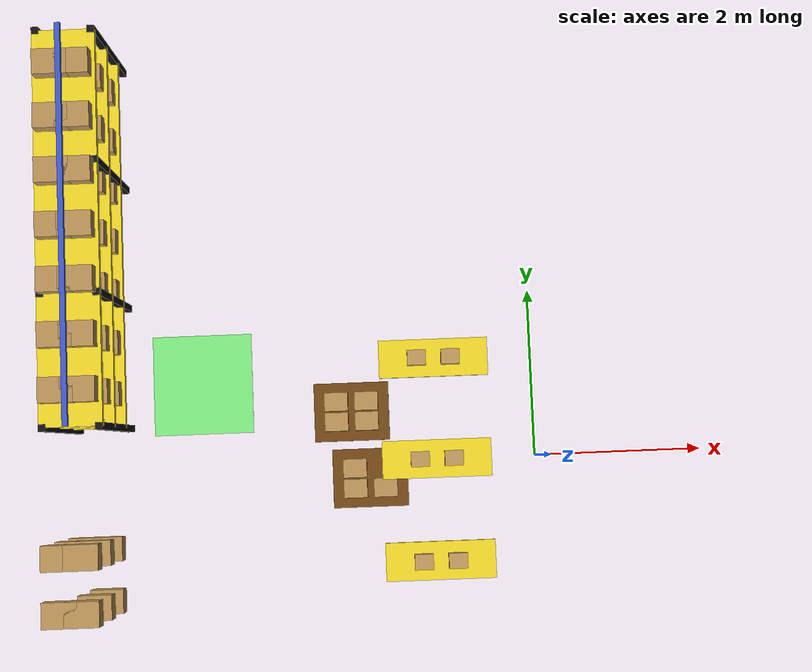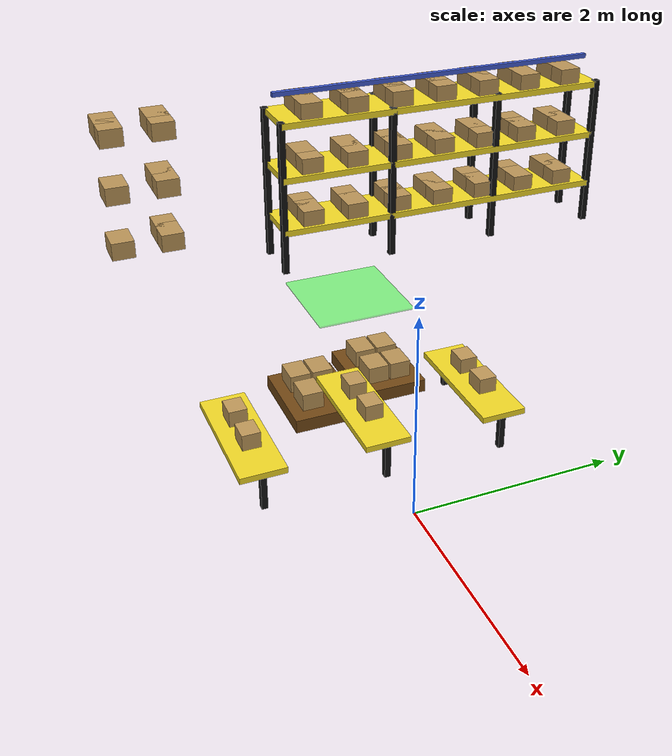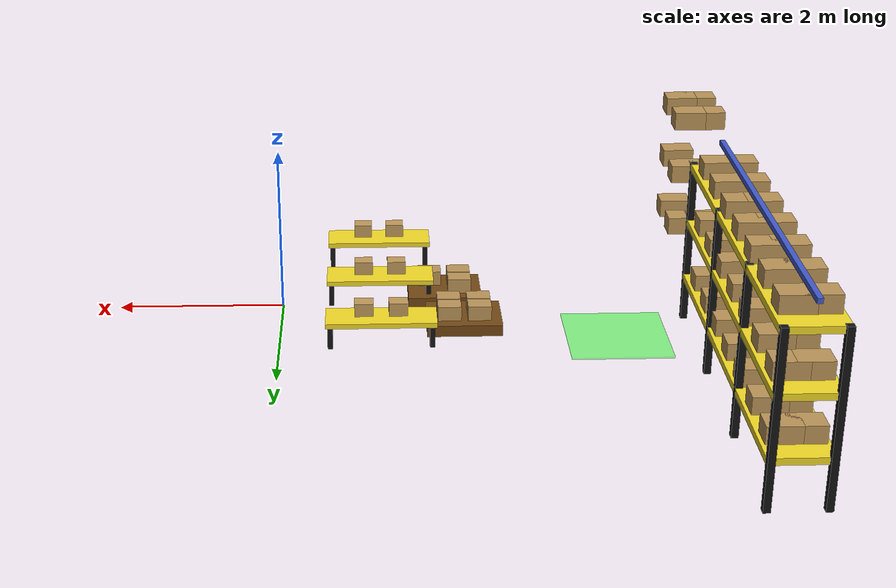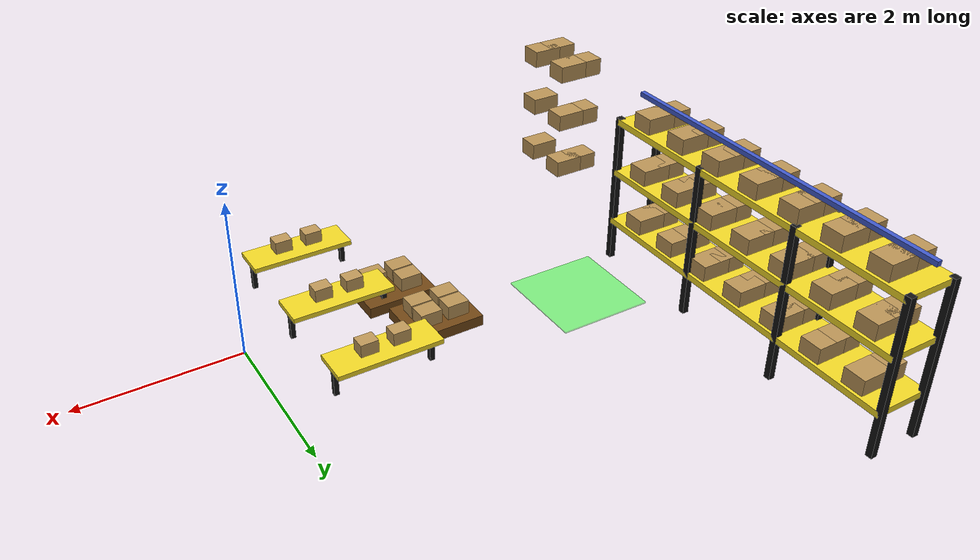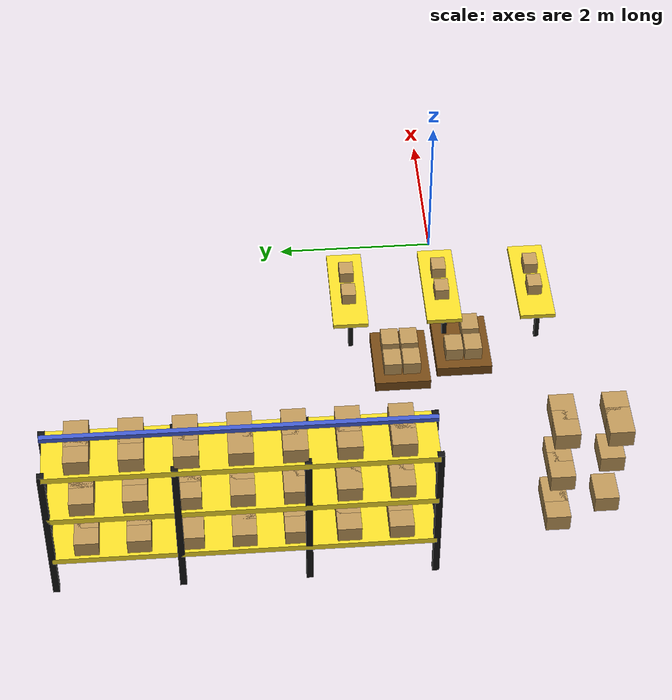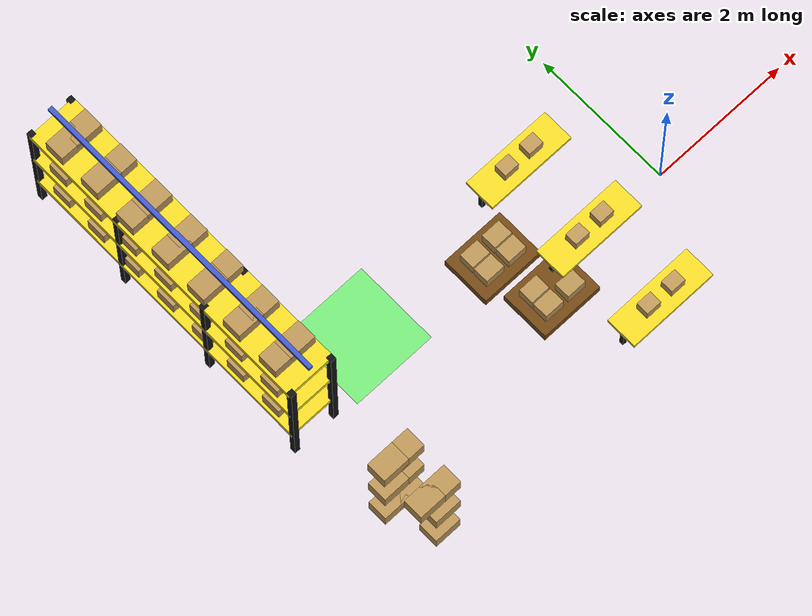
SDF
<sdf version="1.6">
 <world name="fuel_warehouse_world">
  <include><uri>model://sun</uri></include>
  <model name="left_rack_top">
   <static>true</static>
   <pose>-5.2 2.7 0 0 0 1.5708</pose>
   <link name="deck_0">
    <pose>0 0 0.55 0 0 0</pose>
    <visual name="visual">
     <geometry><box><size>4.4 0.7 0.08</size></box></geometry>
     <material><ambient>0.95 0.85 0.15 1</ambient><diffuse>0.95 0.85 0.15 1</diffuse></material>
    </visual>
    <collision name="collision"><geometry><box><size>4.4 0.7 0.08</size></box></geometry></collision>
   </link>
   <link name="deck_1">
    <pose>0 0 1.25 0 0 0</pose>
    <visual name="visual">
     <geometry><box><size>4.4 0.7 0.08</size></box></geometry>
     <material><ambient>0.95 0.85 0.15 1</ambient><diffuse>0.95 0.85 0.15 1</diffuse></material>
    </visual>
    <collision name="collision"><geometry><box><size>4.4 0.7 0.08</size></box></geometry></collision>
   </link>
   <link name="deck_2">
    <pose>0 0 1.95 0 0 0</pose>
    <visual name="visual">
     <geometry><box><size>4.4 0.7 0.08</size></box></geometry>
     <material><ambient>0.95 0.85 0.15 1</ambient><diffuse>0.95 0.85 0.15 1</diffuse></material>
    </visual>
    <collision name="collision"><geometry><box><size>4.4 0.7 0.08</size></box></geometry></collision>
   </link>
   <link name="leg_0_0">
    <pose>-2.2 -0.31 1.0 0 0 0</pose>
    <visual name="visual">
     <geometry><box><size>0.08 0.08 2.0</size></box></geometry>
     <material><ambient>0.07 0.07 0.07 1</ambient><diffuse>0.07 0.07 0.07 1</diffuse></material>
    </visual>
    <collision name="collision"><geometry><box><size>0.08 0.08 2.0</size></box></geometry></collision>
   </link>
   <link name="leg_0_1">
    <pose>-2.2 0.31 1.0 0 0 0</pose>
    <visual name="visual">
     <geometry><box><size>0.08 0.08 2.0</size></box></geometry>
     <material><ambient>0.07 0.07 0.07 1</ambient><diffuse>0.07 0.07 0.07 1</diffuse></material>
    </visual>
    <collision name="collision"><geometry><box><size>0.08 0.08 2.0</size></box></geometry></collision>
   </link>
   <link name="leg_1_0">
    <pose>-0.7333333333333334 -0.31 1.0 0 0 0</pose>
    <visual name="visual">
     <geometry><box><size>0.08 0.08 2.0</size></box></geometry>
     <material><ambient>0.07 0.07 0.07 1</ambient><diffuse>0.07 0.07 0.07 1</diffuse></material>
    </visual>
    <collision name="collision"><geometry><box><size>0.08 0.08 2.0</size></box></geometry></collision>
   </link>
   <link name="leg_1_1">
    <pose>-0.7333333333333334 0.31 1.0 0 0 0</pose>
    <visual name="visual">
     <geometry><box><size>0.08 0.08 2.0</size></box></geometry>
     <material><ambient>0.07 0.07 0.07 1</ambient><diffuse>0.07 0.07 0.07 1</diffuse></material>
    </visual>
    <collision name="collision"><geometry><box><size>0.08 0.08 2.0</size></box></geometry></collision>
   </link>
   <link name="leg_2_0">
    <pose>0.7333333333333334 -0.31 1.0 0 0 0</pose>
    <visual name="visual">
     <geometry><box><size>0.08 0.08 2.0</size></box></geometry>
     <material><ambient>0.07 0.07 0.07 1</ambient><diffuse>0.07 0.07 0.07 1</diffuse></material>
    </visual>
    <collision name="collision"><geometry><box><size>0.08 0.08 2.0</size></box></geometry></collision>
   </link>
   <link name="leg_2_1">
    <pose>0.7333333333333334 0.31 1.0 0 0 0</pose>
    <visual name="visual">
     <geometry><box><size>0.08 0.08 2.0</size></box></geometry>
     <material><ambient>0.07 0.07 0.07 1</ambient><diffuse>0.07 0.07 0.07 1</diffuse></material>
    </visual>
    <collision name="collision"><geometry><box><size>0.08 0.08 2.0</size></box></geometry></collision>
   </link>
   <link name="leg_3_0">
    <pose>2.2 -0.31 1.0 0 0 0</pose>
    <visual name="visual">
     <geometry><box><size>0.08 0.08 2.0</size></box></geometry>
     <material><ambient>0.07 0.07 0.07 1</ambient><diffuse>0.07 0.07 0.07 1</diffuse></material>
    </visual>
    <collision name="collision"><geometry><box><size>0.08 0.08 2.0</size></box></geometry></collision>
   </link>
   <link name="leg_3_1">
    <pose>2.2 0.31 1.0 0 0 0</pose>
    <visual name="visual">
     <geometry><box><size>0.08 0.08 2.0</size></box></geometry>
     <material><ambient>0.07 0.07 0.07 1</ambient><diffuse>0.07 0.07 0.07 1</diffuse></material>
    </visual>
    <collision name="collision"><geometry><box><size>0.08 0.08 2.0</size></box></geometry></collision>
   </link>
   <link name="top_beam">
    <pose>0 0 2.25 0 0 0</pose>
    <visual name="visual">
     <geometry><box><size>4.4 0.06 0.06</size></box></geometry>
     <material><ambient>0.25 0.35 0.8 1</ambient><diffuse>0.25 0.35 0.8 1</diffuse></material>
    </visual>
   </link>
  </model>
  <model name="left_rack_top_box_0">
   <static>true</static>
   <pose>-5.079993388231624 0.9000004407967559 0.68 0 0 0</pose>
   <link name="link">
    <visual name="visual">
     <geometry><box><size>0.38 0.28 0.22</size></box></geometry>
     <material><ambient>0.73 0.58 0.34 1</ambient><diffuse>0.73 0.58 0.34 1</diffuse></material>
    </visual>
    <collision name="collision"><geometry><box><size>0.38 0.28 0.22</size></box></geometry></collision>
   </link>
  </model>
  <model name="left_rack_top_box_1">
   <static>true</static>
   <pose>-5.319993388230004 0.8999995592275312 0.68 0 0 0</pose>
   <link name="link">
    <visual name="visual">
     <geometry><box><size>0.38 0.28 0.22</size></box></geometry>
     <material><ambient>0.73 0.58 0.34 1</ambient><diffuse>0.73 0.58 0.34 1</diffuse></material>
    </visual>
    <collision name="collision"><geometry><box><size>0.38 0.28 0.22</size></box></geometry></collision>
   </link>
  </model>
  <model name="left_rack_top_box_2">
   <static>true</static>
   <pose>-5.079995592154686 1.5000004407927081 0.68 0 0 0</pose>
   <link name="link">
    <visual name="visual">
     <geometry><box><size>0.38 0.28 0.22</size></box></geometry>
     <material><ambient>0.73 0.58 0.34 1</ambient><diffuse>0.73 0.58 0.34 1</diffuse></material>
    </visual>
    <collision name="collision"><geometry><box><size>0.38 0.28 0.22</size></box></geometry></collision>
   </link>
  </model>
  <model name="left_rack_top_box_3">
   <static>true</static>
   <pose>-5.319995592153067 1.4999995592234834 0.68 0 0 0</pose>
   <link name="link">
    <visual name="visual">
     <geometry><box><size>0.38 0.28 0.22</size></box></geometry>
     <material><ambient>0.73 0.58 0.34 1</ambient><diffuse>0.73 0.58 0.34 1</diffuse></material>
    </visual>
    <collision name="collision"><geometry><box><size>0.38 0.28 0.22</size></box></geometry></collision>
   </link>
  </model>
  <model name="left_rack_top_box_4">
   <static>true</static>
   <pose>-5.079997796077748 2.1000004407886603 0.68 0 0 0</pose>
   <link name="link">
    <visual name="visual">
     <geometry><box><size>0.38 0.28 0.22</size></box></geometry>
     <material><ambient>0.73 0.58 0.34 1</ambient><diffuse>0.73 0.58 0.34 1</diffuse></material>
    </visual>
    <collision name="collision"><geometry><box><size>0.38 0.28 0.22</size></box></geometry></collision>
   </link>
  </model>
  <model name="left_rack_top_box_5">
   <static>true</static>
   <pose>-5.319997796076128 2.0999995592194356 0.68 0 0 0</pose>
   <link name="link">
    <visual name="visual">
     <geometry><box><size>0.38 0.28 0.22</size></box></geometry>
     <material><ambient>0.73 0.58 0.34 1</ambient><diffuse>0.73 0.58 0.34 1</diffuse></material>
    </visual>
    <collision name="collision"><geometry><box><size>0.38 0.28 0.22</size></box></geometry></collision>
   </link>
  </model>
  <model name="left_rack_top_box_6">
   <static>true</static>
   <pose>-5.08000000000081 2.7000004407846125 0.68 0 0 0</pose>
   <link name="link">
    <visual name="visual">
     <geometry><box><size>0.38 0.28 0.22</size></box></geometry>
     <material><ambient>0.73 0.58 0.34 1</ambient><diffuse>0.73 0.58 0.34 1</diffuse></material>
    </visual>
    <collision name="collision"><geometry><box><size>0.38 0.28 0.22</size></box></geometry></collision>
   </link>
  </model>
  <model name="left_rack_top_box_7">
   <static>true</static>
   <pose>-5.31999999999919 2.699999559215388 0.68 0 0 0</pose>
   <link name="link">
    <visual name="visual">
     <geometry><box><size>0.38 0.28 0.22</size></box></geometry>
     <material><ambient>0.73 0.58 0.34 1</ambient><diffuse>0.73 0.58 0.34 1</diffuse></material>
    </visual>
    <collision name="collision"><geometry><box><size>0.38 0.28 0.22</size></box></geometry></collision>
   </link>
  </model>
  <model name="left_rack_top_box_8">
   <static>true</static>
   <pose>-5.080002203923872 3.3000004407805648 0.68 0 0 0</pose>
   <link name="link">
    <visual name="visual">
     <geometry><box><size>0.38 0.28 0.22</size></box></geometry>
     <material><ambient>0.73 0.58 0.34 1</ambient><diffuse>0.73 0.58 0.34 1</diffuse></material>
    </visual>
    <collision name="collision"><geometry><box><size>0.38 0.28 0.22</size></box></geometry></collision>
   </link>
  </model>
  <model name="left_rack_top_box_9">
   <static>true</static>
   <pose>-5.320002203922252 3.29999955921134 0.68 0 0 0</pose>
   <link name="link">
    <visual name="visual">
     <geometry><box><size>0.38 0.28 0.22</size></box></geometry>
     <material><ambient>0.73 0.58 0.34 1</ambient><diffuse>0.73 0.58 0.34 1</diffuse></material>
    </visual>
    <collision name="collision"><geometry><box><size>0.38 0.28 0.22</size></box></geometry></collision>
   </link>
  </model>
  <model name="left_rack_top_box_10">
   <static>true</static>
   <pose>-5.080004407846934 3.900000440776517 0.68 0 0 0</pose>
   <link name="link">
    <visual name="visual">
     <geometry><box><size>0.38 0.28 0.22</size></box></geometry>
     <material><ambient>0.73 0.58 0.34 1</ambient><diffuse>0.73 0.58 0.34 1</diffuse></material>
    </visual>
    <collision name="collision"><geometry><box><size>0.38 0.28 0.22</size></box></geometry></collision>
   </link>
  </model>
  <model name="left_rack_top_box_11">
   <static>true</static>
   <pose>-5.320004407845314 3.8999995592072922 0.68 0 0 0</pose>
   <link name="link">
    <visual name="visual">
     <geometry><box><size>0.38 0.28 0.22</size></box></geometry>
     <material><ambient>0.73 0.58 0.34 1</ambient><diffuse>0.73 0.58 0.34 1</diffuse></material>
    </visual>
    <collision name="collision"><geometry><box><size>0.38 0.28 0.22</size></box></geometry></collision>
   </link>
  </model>
  <model name="left_rack_top_box_12">
   <static>true</static>
   <pose>-5.0800066117699965 4.500000440772469 0.68 0 0 0</pose>
   <link name="link">
    <visual name="visual">
     <geometry><box><size>0.38 0.28 0.22</size></box></geometry>
     <material><ambient>0.73 0.58 0.34 1</ambient><diffuse>0.73 0.58 0.34 1</diffuse></material>
    </visual>
    <collision name="collision"><geometry><box><size>0.38 0.28 0.22</size></box></geometry></collision>
   </link>
  </model>
  <model name="left_rack_top_box_13">
   <static>true</static>
   <pose>-5.320006611768377 4.4999995592032445 0.68 0 0 0</pose>
   <link name="link">
    <visual name="visual">
     <geometry><box><size>0.38 0.28 0.22</size></box></geometry>
     <material><ambient>0.73 0.58 0.34 1</ambient><diffuse>0.73 0.58 0.34 1</diffuse></material>
    </visual>
    <collision name="collision"><geometry><box><size>0.38 0.28 0.22</size></box></geometry></collision>
   </link>
  </model>
  <model name="left_rack_top_box_14">
   <static>true</static>
   <pose>-5.079993388231624 0.9000004407967559 1.38 0 0 0</pose>
   <link name="link">
    <visual name="visual">
     <geometry><box><size>0.38 0.28 0.22</size></box></geometry>
     <material><ambient>0.73 0.58 0.34 1</ambient><diffuse>0.73 0.58 0.34 1</diffuse></material>
    </visual>
    <collision name="collision"><geometry><box><size>0.38 0.28 0.22</size></box></geometry></collision>
   </link>
  </model>
  <model name="left_rack_top_box_15">
   <static>true</static>
   <pose>-5.319993388230004 0.8999995592275312 1.38 0 0 0</pose>
   <link name="link">
    <visual name="visual">
     <geometry><box><size>0.38 0.28 0.22</size></box></geometry>
     <material><ambient>0.73 0.58 0.34 1</ambient><diffuse>0.73 0.58 0.34 1</diffuse></material>
    </visual>
    <collision name="collision"><geometry><box><size>0.38 0.28 0.22</size></box></geometry></collision>
   </link>
  </model>
  <model name="left_rack_top_box_16">
   <static>true</static>
   <pose>-5.079995592154686 1.5000004407927081 1.38 0 0 0</pose>
   <link name="link">
    <visual name="visual">
     <geometry><box><size>0.38 0.28 0.22</size></box></geometry>
     <material><ambient>0.73 0.58 0.34 1</ambient><diffuse>0.73 0.58 0.34 1</diffuse></material>
    </visual>
    <collision name="collision"><geometry><box><size>0.38 0.28 0.22</size></box></geometry></collision>
   </link>
  </model>
  <model name="left_rack_top_box_17">
   <static>true</static>
   <pose>-5.319995592153067 1.4999995592234834 1.38 0 0 0</pose>
   <link name="link">
    <visual name="visual">
     <geometry><box><size>0.38 0.28 0.22</size></box></geometry>
     <material><ambient>0.73 0.58 0.34 1</ambient><diffuse>0.73 0.58 0.34 1</diffuse></material>
    </visual>
    <collision name="collision"><geometry><box><size>0.38 0.28 0.22</size></box></geometry></collision>
   </link>
  </model>
  <model name="left_rack_top_box_18">
   <static>true</static>
   <pose>-5.079997796077748 2.1000004407886603 1.38 0 0 0</pose>
   <link name="link">
    <visual name="visual">
     <geometry><box><size>0.38 0.28 0.22</size></box></geometry>
     <material><ambient>0.73 0.58 0.34 1</ambient><diffuse>0.73 0.58 0.34 1</diffuse></material>
    </visual>
    <collision name="collision"><geometry><box><size>0.38 0.28 0.22</size></box></geometry></collision>
   </link>
  </model>
  <model name="left_rack_top_box_19">
   <static>true</static>
   <pose>-5.319997796076128 2.0999995592194356 1.38 0 0 0</pose>
   <link name="link">
    <visual name="visual">
     <geometry><box><size>0.38 0.28 0.22</size></box></geometry>
     <material><ambient>0.73 0.58 0.34 1</ambient><diffuse>0.73 0.58 0.34 1</diffuse></material>
    </visual>
    <collision name="collision"><geometry><box><size>0.38 0.28 0.22</size></box></geometry></collision>
   </link>
  </model>
  <model name="left_rack_top_box_20">
   <static>true</static>
   <pose>-5.08000000000081 2.7000004407846125 1.38 0 0 0</pose>
   <link name="link">
    <visual name="visual">
     <geometry><box><size>0.38 0.28 0.22</size></box></geometry>
     <material><ambient>0.73 0.58 0.34 1</ambient><diffuse>0.73 0.58 0.34 1</diffuse></material>
    </visual>
    <collision name="collision"><geometry><box><size>0.38 0.28 0.22</size></box></geometry></collision>
   </link>
  </model>
  <model name="left_rack_top_box_21">
   <static>true</static>
   <pose>-5.31999999999919 2.699999559215388 1.38 0 0 0</pose>
   <link name="link">
    <visual name="visual">
     <geometry><box><size>0.38 0.28 0.22</size></box></geometry>
     <material><ambient>0.73 0.58 0.34 1</ambient><diffuse>0.73 0.58 0.34 1</diffuse></material>
    </visual>
    <collision name="collision"><geometry><box><size>0.38 0.28 0.22</size></box></geometry></collision>
   </link>
  </model>
  <model name="left_rack_top_box_22">
   <static>true</static>
   <pose>-5.080002203923872 3.3000004407805648 1.38 0 0 0</pose>
   <link name="link">
    <visual name="visual">
     <geometry><box><size>0.38 0.28 0.22</size></box></geometry>
     <material><ambient>0.73 0.58 0.34 1</ambient><diffuse>0.73 0.58 0.34 1</diffuse></material>
    </visual>
    <collision name="collision"><geometry><box><size>0.38 0.28 0.22</size></box></geometry></collision>
   </link>
  </model>
  <model name="left_rack_top_box_23">
   <static>true</static>
   <pose>-5.320002203922252 3.29999955921134 1.38 0 0 0</pose>
   <link name="link">
    <visual name="visual">
     <geometry><box><size>0.38 0.28 0.22</size></box></geometry>
     <material><ambient>0.73 0.58 0.34 1</ambient><diffuse>0.73 0.58 0.34 1</diffuse></material>
    </visual>
    <collision name="collision"><geometry><box><size>0.38 0.28 0.22</size></box></geometry></collision>
   </link>
  </model>
  <model name="left_rack_top_box_24">
   <static>true</static>
   <pose>-5.080004407846934 3.900000440776517 1.38 0 0 0</pose>
   <link name="link">
    <visual name="visual">
     <geometry><box><size>0.38 0.28 0.22</size></box></geometry>
     <material><ambient>0.73 0.58 0.34 1</ambient><diffuse>0.73 0.58 0.34 1</diffuse></material>
    </visual>
    <collision name="collision"><geometry><box><size>0.38 0.28 0.22</size></box></geometry></collision>
   </link>
  </model>
  <model name="left_rack_top_box_25">
   <static>true</static>
   <pose>-5.320004407845314 3.8999995592072922 1.38 0 0 0</pose>
   <link name="link">
    <visual name="visual">
     <geometry><box><size>0.38 0.28 0.22</size></box></geometry>
     <material><ambient>0.73 0.58 0.34 1</ambient><diffuse>0.73 0.58 0.34 1</diffuse></material>
    </visual>
    <collision name="collision"><geometry><box><size>0.38 0.28 0.22</size></box></geometry></collision>
   </link>
  </model>
  <model name="left_rack_top_box_26">
   <static>true</static>
   <pose>-5.0800066117699965 4.500000440772469 1.38 0 0 0</pose>
   <link name="link">
    <visual name="visual">
     <geometry><box><size>0.38 0.28 0.22</size></box></geometry>
     <material><ambient>0.73 0.58 0.34 1</ambient><diffuse>0.73 0.58 0.34 1</diffuse></material>
    </visual>
    <collision name="collision"><geometry><box><size>0.38 0.28 0.22</size></box></geometry></collision>
   </link>
  </model>
  <model name="left_rack_top_box_27">
   <static>true</static>
   <pose>-5.320006611768377 4.4999995592032445 1.38 0 0 0</pose>
   <link name="link">
    <visual name="visual">
     <geometry><box><size>0.38 0.28 0.22</size></box></geometry>
     <material><ambient>0.73 0.58 0.34 1</ambient><diffuse>0.73 0.58 0.34 1</diffuse></material>
    </visual>
    <collision name="collision"><geometry><box><size>0.38 0.28 0.22</size></box></geometry></collision>
   </link>
  </model>
  <model name="left_rack_top_box_28">
   <static>true</static>
   <pose>-5.079993388231624 0.9000004407967559 2.08 0 0 0</pose>
   <link name="link">
    <visual name="visual">
     <geometry><box><size>0.38 0.28 0.22</size></box></geometry>
     <material><ambient>0.73 0.58 0.34 1</ambient><diffuse>0.73 0.58 0.34 1</diffuse></material>
    </visual>
    <collision name="collision"><geometry><box><size>0.38 0.28 0.22</size></box></geometry></collision>
   </link>
  </model>
  <model name="left_rack_top_box_29">
   <static>true</static>
   <pose>-5.319993388230004 0.8999995592275312 2.08 0 0 0</pose>
   <link name="link">
    <visual name="visual">
     <geometry><box><size>0.38 0.28 0.22</size></box></geometry>
     <material><ambient>0.73 0.58 0.34 1</ambient><diffuse>0.73 0.58 0.34 1</diffuse></material>
    </visual>
    <collision name="collision"><geometry><box><size>0.38 0.28 0.22</size></box></geometry></collision>
   </link>
  </model>
  <model name="left_rack_top_box_30">
   <static>true</static>
   <pose>-5.079995592154686 1.5000004407927081 2.08 0 0 0</pose>
   <link name="link">
    <visual name="visual">
     <geometry><box><size>0.38 0.28 0.22</size></box></geometry>
     <material><ambient>0.73 0.58 0.34 1</ambient><diffuse>0.73 0.58 0.34 1</diffuse></material>
    </visual>
    <collision name="collision"><geometry><box><size>0.38 0.28 0.22</size></box></geometry></collision>
   </link>
  </model>
  <model name="left_rack_top_box_31">
   <static>true</static>
   <pose>-5.319995592153067 1.4999995592234834 2.08 0 0 0</pose>
   <link name="link">
    <visual name="visual">
     <geometry><box><size>0.38 0.28 0.22</size></box></geometry>
     <material><ambient>0.73 0.58 0.34 1</ambient><diffuse>0.73 0.58 0.34 1</diffuse></material>
    </visual>
    <collision name="collision"><geometry><box><size>0.38 0.28 0.22</size></box></geometry></collision>
   </link>
  </model>
  <model name="left_rack_top_box_32">
   <static>true</static>
   <pose>-5.079997796077748 2.1000004407886603 2.08 0 0 0</pose>
   <link name="link">
    <visual name="visual">
     <geometry><box><size>0.38 0.28 0.22</size></box></geometry>
     <material><ambient>0.73 0.58 0.34 1</ambient><diffuse>0.73 0.58 0.34 1</diffuse></material>
    </visual>
    <collision name="collision"><geometry><box><size>0.38 0.28 0.22</size></box></geometry></collision>
   </link>
  </model>
  <model name="left_rack_top_box_33">
   <static>true</static>
   <pose>-5.319997796076128 2.0999995592194356 2.08 0 0 0</pose>
   <link name="link">
    <visual name="visual">
     <geometry><box><size>0.38 0.28 0.22</size></box></geometry>
     <material><ambient>0.73 0.58 0.34 1</ambient><diffuse>0.73 0.58 0.34 1</diffuse></material>
    </visual>
    <collision name="collision"><geometry><box><size>0.38 0.28 0.22</size></box></geometry></collision>
   </link>
  </model>
  <model name="left_rack_top_box_34">
   <static>true</static>
   <pose>-5.08000000000081 2.7000004407846125 2.08 0 0 0</pose>
   <link name="link">
    <visual name="visual">
     <geometry><box><size>0.38 0.28 0.22</size></box></geometry>
     <material><ambient>0.73 0.58 0.34 1</ambient><diffuse>0.73 0.58 0.34 1</diffuse></material>
    </visual>
    <collision name="collision"><geometry><box><size>0.38 0.28 0.22</size></box></geometry></collision>
   </link>
  </model>
  <model name="left_rack_top_box_35">
   <static>true</static>
   <pose>-5.31999999999919 2.699999559215388 2.08 0 0 0</pose>
   <link name="link">
    <visual name="visual">
     <geometry><box><size>0.38 0.28 0.22</size></box></geometry>
     <material><ambient>0.73 0.58 0.34 1</ambient><diffuse>0.73 0.58 0.34 1</diffuse></material>
    </visual>
    <collision name="collision"><geometry><box><size>0.38 0.28 0.22</size></box></geometry></collision>
   </link>
  </model>
  <model name="left_rack_top_box_36">
   <static>true</static>
   <pose>-5.080002203923872 3.3000004407805648 2.08 0 0 0</pose>
   <link name="link">
    <visual name="visual">
     <geometry><box><size>0.38 0.28 0.22</size></box></geometry>
     <material><ambient>0.73 0.58 0.34 1</ambient><diffuse>0.73 0.58 0.34 1</diffuse></material>
    </visual>
    <collision name="collision"><geometry><box><size>0.38 0.28 0.22</size></box></geometry></collision>
   </link>
  </model>
  <model name="left_rack_top_box_37">
   <static>true</static>
   <pose>-5.320002203922252 3.29999955921134 2.08 0 0 0</pose>
   <link name="link">
    <visual name="visual">
     <geometry><box><size>0.38 0.28 0.22</size></box></geometry>
     <material><ambient>0.73 0.58 0.34 1</ambient><diffuse>0.73 0.58 0.34 1</diffuse></material>
    </visual>
    <collision name="collision"><geometry><box><size>0.38 0.28 0.22</size></box></geometry></collision>
   </link>
  </model>
  <model name="left_rack_top_box_38">
   <static>true</static>
   <pose>-5.080004407846934 3.900000440776517 2.08 0 0 0</pose>
   <link name="link">
    <visual name="visual">
     <geometry><box><size>0.38 0.28 0.22</size></box></geometry>
     <material><ambient>0.73 0.58 0.34 1</ambient><diffuse>0.73 0.58 0.34 1</diffuse></material>
    </visual>
    <collision name="collision"><geometry><box><size>0.38 0.28 0.22</size></box></geometry></collision>
   </link>
  </model>
  <model name="left_rack_top_box_39">
   <static>true</static>
   <pose>-5.320004407845314 3.8999995592072922 2.08 0 0 0</pose>
   <link name="link">
    <visual name="visual">
     <geometry><box><size>0.38 0.28 0.22</size></box></geometry>
     <material><ambient>0.73 0.58 0.34 1</ambient><diffuse>0.73 0.58 0.34 1</diffuse></material>
    </visual>
    <collision name="collision"><geometry><box><size>0.38 0.28 0.22</size></box></geometry></collision>
   </link>
  </model>
  <model name="left_rack_top_box_40">
   <static>true</static>
   <pose>-5.0800066117699965 4.500000440772469 2.08 0 0 0</pose>
   <link name="link">
    <visual name="visual">
     <geometry><box><size>0.38 0.28 0.22</size></box></geometry>
     <material><ambient>0.73 0.58 0.34 1</ambient><diffuse>0.73 0.58 0.34 1</diffuse></material>
    </visual>
    <collision name="collision"><geometry><box><size>0.38 0.28 0.22</size></box></geometry></collision>
   </link>
  </model>
  <model name="left_rack_top_box_41">
   <static>true</static>
   <pose>-5.320006611768377 4.4999995592032445 2.08 0 0 0</pose>
   <link name="link">
    <visual name="visual">
     <geometry><box><size>0.38 0.28 0.22</size></box></geometry>
     <material><ambient>0.73 0.58 0.34 1</ambient><diffuse>0.73 0.58 0.34 1</diffuse></material>
    </visual>
    <collision name="collision"><geometry><box><size>0.38 0.28 0.22</size></box></geometry></collision>
   </link>
  </model>
  <model name="left_rack_bottom_box_10">
   <static>true</static>
   <pose>-5.080004407846934 -1.4999995592234834 0.68 0 0 0</pose>
   <link name="link">
    <visual name="visual">
     <geometry><box><size>0.38 0.28 0.22</size></box></geometry>
     <material><ambient>0.73 0.58 0.34 1</ambient><diffuse>0.73 0.58 0.34 1</diffuse></material>
    </visual>
    <collision name="collision"><geometry><box><size>0.38 0.28 0.22</size></box></geometry></collision>
   </link>
  </model>
  <model name="left_rack_bottom_box_12">
   <static>true</static>
   <pose>-5.0800066117699965 -0.8999995592275312 0.68 0 0 0</pose>
   <link name="link">
    <visual name="visual">
     <geometry><box><size>0.38 0.28 0.22</size></box></geometry>
     <material><ambient>0.73 0.58 0.34 1</ambient><diffuse>0.73 0.58 0.34 1</diffuse></material>
    </visual>
    <collision name="collision"><geometry><box><size>0.38 0.28 0.22</size></box></geometry></collision>
   </link>
  </model>
  <model name="left_rack_bottom_box_13">
   <static>true</static>
   <pose>-5.320006611768377 -0.9000004407967559 0.68 0 0 0</pose>
   <link name="link">
    <visual name="visual">
     <geometry><box><size>0.38 0.28 0.22</size></box></geometry>
     <material><ambient>0.73 0.58 0.34 1</ambient><diffuse>0.73 0.58 0.34 1</diffuse></material>
    </visual>
    <collision name="collision"><geometry><box><size>0.38 0.28 0.22</size></box></geometry></collision>
   </link>
  </model>
  <model name="left_rack_bottom_box_24">
   <static>true</static>
   <pose>-5.080004407846934 -1.4999995592234834 1.38 0 0 0</pose>
   <link name="link">
    <visual name="visual">
     <geometry><box><size>0.38 0.28 0.22</size></box></geometry>
     <material><ambient>0.73 0.58 0.34 1</ambient><diffuse>0.73 0.58 0.34 1</diffuse></material>
    </visual>
    <collision name="collision"><geometry><box><size>0.38 0.28 0.22</size></box></geometry></collision>
   </link>
  </model>
  <model name="left_rack_bottom_box_26">
   <static>true</static>
   <pose>-5.0800066117699965 -0.8999995592275312 1.38 0 0 0</pose>
   <link name="link">
    <visual name="visual">
     <geometry><box><size>0.38 0.28 0.22</size></box></geometry>
     <material><ambient>0.73 0.58 0.34 1</ambient><diffuse>0.73 0.58 0.34 1</diffuse></material>
    </visual>
    <collision name="collision"><geometry><box><size>0.38 0.28 0.22</size></box></geometry></collision>
   </link>
  </model>
  <model name="left_rack_bottom_box_27">
   <static>true</static>
   <pose>-5.320006611768377 -0.9000004407967559 1.38 0 0 0</pose>
   <link name="link">
    <visual name="visual">
     <geometry><box><size>0.38 0.28 0.22</size></box></geometry>
     <material><ambient>0.73 0.58 0.34 1</ambient><diffuse>0.73 0.58 0.34 1</diffuse></material>
    </visual>
    <collision name="collision"><geometry><box><size>0.38 0.28 0.22</size></box></geometry></collision>
   </link>
  </model>
  <model name="left_rack_bottom_box_38">
   <static>true</static>
   <pose>-5.080004407846934 -1.4999995592234834 2.08 0 0 0</pose>
   <link name="link">
    <visual name="visual">
     <geometry><box><size>0.38 0.28 0.22</size></box></geometry>
     <material><ambient>0.73 0.58 0.34 1</ambient><diffuse>0.73 0.58 0.34 1</diffuse></material>
    </visual>
    <collision name="collision"><geometry><box><size>0.38 0.28 0.22</size></box></geometry></collision>
   </link>
  </model>
  <model name="left_rack_bottom_box_39">
   <static>true</static>
   <pose>-5.320004407845314 -1.5000004407927081 2.08 0 0 0</pose>
   <link name="link">
    <visual name="visual">
     <geometry><box><size>0.38 0.28 0.22</size></box></geometry>
     <material><ambient>0.73 0.58 0.34 1</ambient><diffuse>0.73 0.58 0.34 1</diffuse></material>
    </visual>
    <collision name="collision"><geometry><box><size>0.38 0.28 0.22</size></box></geometry></collision>
   </link>
  </model>
  <model name="left_rack_bottom_box_40">
   <static>true</static>
   <pose>-5.0800066117699965 -0.8999995592275312 2.08 0 0 0</pose>
   <link name="link">
    <visual name="visual">
     <geometry><box><size>0.38 0.28 0.22</size></box></geometry>
     <material><ambient>0.73 0.58 0.34 1</ambient><diffuse>0.73 0.58 0.34 1</diffuse></material>
    </visual>
    <collision name="collision"><geometry><box><size>0.38 0.28 0.22</size></box></geometry></collision>
   </link>
  </model>
  <model name="left_rack_bottom_box_41">
   <static>true</static>
   <pose>-5.320006611768377 -0.9000004407967559 2.08 0 0 0</pose>
   <link name="link">
    <visual name="visual">
     <geometry><box><size>0.38 0.28 0.22</size></box></geometry>
     <material><ambient>0.73 0.58 0.34 1</ambient><diffuse>0.73 0.58 0.34 1</diffuse></material>
    </visual>
    <collision name="collision"><geometry><box><size>0.38 0.28 0.22</size></box></geometry></collision>
   </link>
  </model>
  <model name="center_low_rack_0">
   <static>true</static>
   <pose>-1.2 1.2 0 0 0 0.0</pose>
   <link name="link">
    <visual name="top">
     <pose>0 0 0.38 0 0 0</pose>
     <geometry><box><size>1.3 0.45 0.06</size></box></geometry>
     <material><ambient>0.95 0.85 0.15 1</ambient><diffuse>0.95 0.85 0.15 1</diffuse></material>
    </visual>
    <visual name="leg1">
     <pose>-0.6 0 0.19 0 0 0</pose>
     <geometry><box><size>0.06 0.06 0.38</size></box></geometry>
     <material><ambient>0.08 0.08 0.08 1</ambient><diffuse>0.08 0.08 0.08 1</diffuse></material>
    </visual>
    <visual name="leg2">
     <pose>0.6 0 0.19 0 0 0</pose>
     <geometry><box><size>0.06 0.06 0.38</size></box></geometry>
     <material><ambient>0.08 0.08 0.08 1</ambient><diffuse>0.08 0.08 0.08 1</diffuse></material>
    </visual>
    <collision name="collision">
     <pose>0 0 0.19 0 0 0</pose>
     <geometry><box><size>1.3 0.45 0.38</size></box></geometry>
    </collision>
   </link>
  </model>
  <model name="center_low_box_0_a">
   <static>true</static>
   <pose>-1.4 1.2 0.52 0 0 0</pose>
   <link name="link">
    <visual name="visual">
     <geometry><box><size>0.22 0.18 0.16</size></box></geometry>
     <material><ambient>0.75 0.60 0.35 1</ambient><diffuse>0.75 0.60 0.35 1</diffuse></material>
    </visual>
    <collision name="collision"><geometry><box><size>0.22 0.18 0.16</size></box></geometry></collision>
   </link>
  </model>
  <model name="center_low_box_0_b">
   <static>true</static>
   <pose>-1.0 1.2 0.52 0 0 0</pose>
   <link name="link">
    <visual name="visual">
     <geometry><box><size>0.22 0.18 0.16</size></box></geometry>
     <material><ambient>0.75 0.60 0.35 1</ambient><diffuse>0.75 0.60 0.35 1</diffuse></material>
    </visual>
    <collision name="collision"><geometry><box><size>0.22 0.18 0.16</size></box></geometry></collision>
   </link>
  </model>
  <model name="center_low_rack_3">
   <static>true</static>
   <pose>-1.2 0.0 0 0 0 0.0</pose>
   <link name="link">
    <visual name="top">
     <pose>0 0 0.38 0 0 0</pose>
     <geometry><box><size>1.3 0.45 0.06</size></box></geometry>
     <material><ambient>0.95 0.85 0.15 1</ambient><diffuse>0.95 0.85 0.15 1</diffuse></material>
    </visual>
    <visual name="leg1">
     <pose>-0.6 0 0.19 0 0 0</pose>
     <geometry><box><size>0.06 0.06 0.38</size></box></geometry>
     <material><ambient>0.08 0.08 0.08 1</ambient><diffuse>0.08 0.08 0.08 1</diffuse></material>
    </visual>
    <visual name="leg2">
     <pose>0.6 0 0.19 0 0 0</pose>
     <geometry><box><size>0.06 0.06 0.38</size></box></geometry>
     <material><ambient>0.08 0.08 0.08 1</ambient><diffuse>0.08 0.08 0.08 1</diffuse></material>
    </visual>
    <collision name="collision">
     <pose>0 0 0.19 0 0 0</pose>
     <geometry><box><size>1.3 0.45 0.38</size></box></geometry>
    </collision>
   </link>
  </model>
  <model name="center_low_box_3_a">
   <static>true</static>
   <pose>-1.4 0.0 0.52 0 0 0</pose>
   <link name="link">
    <visual name="visual">
     <geometry><box><size>0.22 0.18 0.16</size></box></geometry>
     <material><ambient>0.75 0.60 0.35 1</ambient><diffuse>0.75 0.60 0.35 1</diffuse></material>
    </visual>
    <collision name="collision"><geometry><box><size>0.22 0.18 0.16</size></box></geometry></collision>
   </link>
  </model>
  <model name="center_low_box_3_b">
   <static>true</static>
   <pose>-1.0 0.0 0.52 0 0 0</pose>
   <link name="link">
    <visual name="visual">
     <geometry><box><size>0.22 0.18 0.16</size></box></geometry>
     <material><ambient>0.75 0.60 0.35 1</ambient><diffuse>0.75 0.60 0.35 1</diffuse></material>
    </visual>
    <collision name="collision"><geometry><box><size>0.22 0.18 0.16</size></box></geometry></collision>
   </link>
  </model>
  <model name="center_low_rack_6">
   <static>true</static>
   <pose>-1.2 -1.2 0 0 0 0.0</pose>
   <link name="link">
    <visual name="top">
     <pose>0 0 0.38 0 0 0</pose>
     <geometry><box><size>1.3 0.45 0.06</size></box></geometry>
     <material><ambient>0.95 0.85 0.15 1</ambient><diffuse>0.95 0.85 0.15 1</diffuse></material>
    </visual>
    <visual name="leg1">
     <pose>-0.6 0 0.19 0 0 0</pose>
     <geometry><box><size>0.06 0.06 0.38</size></box></geometry>
     <material><ambient>0.08 0.08 0.08 1</ambient><diffuse>0.08 0.08 0.08 1</diffuse></material>
    </visual>
    <visual name="leg2">
     <pose>0.6 0 0.19 0 0 0</pose>
     <geometry><box><size>0.06 0.06 0.38</size></box></geometry>
     <material><ambient>0.08 0.08 0.08 1</ambient><diffuse>0.08 0.08 0.08 1</diffuse></material>
    </visual>
    <collision name="collision">
     <pose>0 0 0.19 0 0 0</pose>
     <geometry><box><size>1.3 0.45 0.38</size></box></geometry>
    </collision>
   </link>
  </model>
  <model name="center_low_box_6_a">
   <static>true</static>
   <pose>-1.4 -1.2 0.52 0 0 0</pose>
   <link name="link">
    <visual name="visual">
     <geometry><box><size>0.22 0.18 0.16</size></box></geometry>
     <material><ambient>0.75 0.60 0.35 1</ambient><diffuse>0.75 0.60 0.35 1</diffuse></material>
    </visual>
    <collision name="collision"><geometry><box><size>0.22 0.18 0.16</size></box></geometry></collision>
   </link>
  </model>
  <model name="center_low_box_6_b">
   <static>true</static>
   <pose>-1.0 -1.2 0.52 0 0 0</pose>
   <link name="link">
    <visual name="visual">
     <geometry><box><size>0.22 0.18 0.16</size></box></geometry>
     <material><ambient>0.75 0.60 0.35 1</ambient><diffuse>0.75 0.60 0.35 1</diffuse></material>
    </visual>
    <collision name="collision"><geometry><box><size>0.22 0.18 0.16</size></box></geometry></collision>
   </link>
  </model>
  <model name="pallet_group_0_pallet">
   <static>true</static>
   <pose>-2.2 0.6 0.07 0 0 0</pose>
   <link name="link">
    <visual name="visual">
     <geometry><box><size>0.9 0.7 0.14</size></box></geometry>
     <material><ambient>0.45 0.28 0.08 1</ambient><diffuse>0.45 0.28 0.08 1</diffuse></material>
    </visual>
    <collision name="collision"><geometry><box><size>0.9 0.7 0.14</size></box></geometry></collision>
   </link>
  </model>
  <model name="pallet_group_0_box_0">
   <static>true</static>
   <pose>-2.3800000000000003 0.48 0.24 0 0 0</pose>
   <link name="link">
    <visual name="visual">
     <geometry><box><size>0.28 0.22 0.18</size></box></geometry>
     <material><ambient>0.73 0.58 0.34 1</ambient><diffuse>0.73 0.58 0.34 1</diffuse></material>
    </visual>
    <collision name="collision"><geometry><box><size>0.28 0.22 0.18</size></box></geometry></collision>
   </link>
  </model>
  <model name="pallet_group_0_box_1">
   <static>true</static>
   <pose>-2.02 0.48 0.24 0 0 0</pose>
   <link name="link">
    <visual name="visual">
     <geometry><box><size>0.28 0.22 0.18</size></box></geometry>
     <material><ambient>0.73 0.58 0.34 1</ambient><diffuse>0.73 0.58 0.34 1</diffuse></material>
    </visual>
    <collision name="collision"><geometry><box><size>0.28 0.22 0.18</size></box></geometry></collision>
   </link>
  </model>
  <model name="pallet_group_0_box_2">
   <static>true</static>
   <pose>-2.3800000000000003 0.72 0.24 0 0 0</pose>
   <link name="link">
    <visual name="visual">
     <geometry><box><size>0.28 0.22 0.18</size></box></geometry>
     <material><ambient>0.73 0.58 0.34 1</ambient><diffuse>0.73 0.58 0.34 1</diffuse></material>
    </visual>
    <collision name="collision"><geometry><box><size>0.28 0.22 0.18</size></box></geometry></collision>
   </link>
  </model>
  <model name="pallet_group_0_box_3">
   <static>true</static>
   <pose>-2.02 0.72 0.24 0 0 0</pose>
   <link name="link">
    <visual name="visual">
     <geometry><box><size>0.28 0.22 0.18</size></box></geometry>
     <material><ambient>0.73 0.58 0.34 1</ambient><diffuse>0.73 0.58 0.34 1</diffuse></material>
    </visual>
    <collision name="collision"><geometry><box><size>0.28 0.22 0.18</size></box></geometry></collision>
   </link>
  </model>
  <model name="pallet_group_1_pallet">
   <static>true</static>
   <pose>-2.0 -0.2 0.07 0 0 0</pose>
   <link name="link">
    <visual name="visual">
     <geometry><box><size>0.9 0.7 0.14</size></box></geometry>
     <material><ambient>0.45 0.28 0.08 1</ambient><diffuse>0.45 0.28 0.08 1</diffuse></material>
    </visual>
    <collision name="collision"><geometry><box><size>0.9 0.7 0.14</size></box></geometry></collision>
   </link>
  </model>
  <model name="pallet_group_1_box_0">
   <static>true</static>
   <pose>-2.18 -0.32 0.24 0 0 0</pose>
   <link name="link">
    <visual name="visual">
     <geometry><box><size>0.28 0.22 0.18</size></box></geometry>
     <material><ambient>0.73 0.58 0.34 1</ambient><diffuse>0.73 0.58 0.34 1</diffuse></material>
    </visual>
    <collision name="collision"><geometry><box><size>0.28 0.22 0.18</size></box></geometry></collision>
   </link>
  </model>
  <model name="pallet_group_1_box_1">
   <static>true</static>
   <pose>-1.82 -0.32 0.24 0 0 0</pose>
   <link name="link">
    <visual name="visual">
     <geometry><box><size>0.28 0.22 0.18</size></box></geometry>
     <material><ambient>0.73 0.58 0.34 1</ambient><diffuse>0.73 0.58 0.34 1</diffuse></material>
    </visual>
    <collision name="collision"><geometry><box><size>0.28 0.22 0.18</size></box></geometry></collision>
   </link>
  </model>
  <model name="pallet_group_1_box_2">
   <static>true</static>
   <pose>-2.18 -0.08000000000000002 0.24 0 0 0</pose>
   <link name="link">
    <visual name="visual">
     <geometry><box><size>0.28 0.22 0.18</size></box></geometry>
     <material><ambient>0.73 0.58 0.34 1</ambient><diffuse>0.73 0.58 0.34 1</diffuse></material>
    </visual>
    <collision name="collision"><geometry><box><size>0.28 0.22 0.18</size></box></geometry></collision>
   </link>
  </model>
  <model name="pickup_zone">
   <static>true</static>
   <pose>-4.0 1.0 0.01 0 0 0</pose>
   <link name="link">
    <visual name="visual">
     <geometry><box><size>1.2 1.2 0.02</size></box></geometry>
     <material><ambient>0 1 0 0.45</ambient><diffuse>0 1 0 0.45</diffuse></material>
    </visual>
   </link>
  </model>
 </world>
</sdf>
